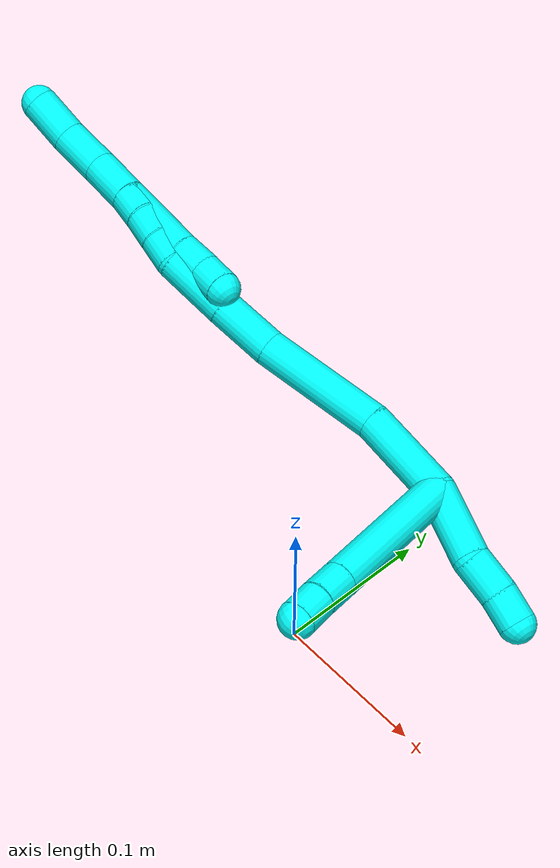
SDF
<sdf version="1.7">
 <world name="default">
  <model name="3">
   <static>0</static>
   <link name="3">
    <collision name="collision-cylinder-e_1_2_8">
     <pose>-0.031366 0.041158 -0.014623 -1.91217 -0.622782 0.855541</pose>
     <geometry><cylinder><radius>0.0125</radius><length>0.107548</length></cylinder></geometry>
     <surface>
      <friction><ode><mu>1.16</mu><mu2>1.16</mu2><slip1>0</slip1><slip2>0</slip2></ode></friction>
      <contact><ode><kp>1e+06</kp><kd>1</kd><max_vel>0</max_vel><min_depth>0.001</min_depth></ode></contact>
     </surface>
    </collision>
    <visual name="visual-cylinder-e_1_2_8">
     <pose>-0.031366 0.041158 -0.014623 -1.91217 -0.622782 0.855541</pose>
     <geometry><cylinder><radius>0.0125</radius><length>0.107548</length></cylinder></geometry>
     <material><ambient>0.003922 1 0.996078 1</ambient></material>
    </visual>
    <collision name="collision-cylinder-e_2_8_9">
     <pose>-0.069195 0.090853 -0.032199 -1.90388 -0.620991 0.84662</pose>
     <geometry><cylinder><radius>0.0125</radius><length>0.022215</length></cylinder></geometry>
     <surface>
      <friction><ode><mu>1.16</mu><mu2>1.16</mu2><slip1>0</slip1><slip2>0</slip2></ode></friction>
      <contact><ode><kp>1e+06</kp><kd>1</kd><max_vel>0</max_vel><min_depth>0.001</min_depth></ode></contact>
     </surface>
    </collision>
    <visual name="visual-cylinder-e_2_8_9">
     <pose>-0.069195 0.090853 -0.032199 -1.90388 -0.620991 0.84662</pose>
     <geometry><cylinder><radius>0.0125</radius><length>0.022215</length></cylinder></geometry>
     <material><ambient>0.003922 1 0.996078 1</ambient></material>
    </visual>
    <collision name="collision-cylinder-e_3_9_6">
     <pose>-0.081019 0.107438 -0.038132 -1.92532 -0.558392 0.781295</pose>
     <geometry><cylinder><radius>0.0125</radius><length>0.020237</length></cylinder></geometry>
     <surface>
      <friction><ode><mu>1.16</mu><mu2>1.16</mu2><slip1>0</slip1><slip2>0</slip2></ode></friction>
      <contact><ode><kp>1e+06</kp><kd>1</kd><max_vel>0</max_vel><min_depth>0.001</min_depth></ode></contact>
     </surface>
    </collision>
    <visual name="visual-cylinder-e_3_9_6">
     <pose>-0.081019 0.107438 -0.038132 -1.92532 -0.558392 0.781295</pose>
     <geometry><cylinder><radius>0.0125</radius><length>0.020237</length></cylinder></geometry>
     <material><ambient>0.003922 1 0.996078 1</ambient></material>
    </visual>
    <collision name="collision-cylinder-e_1_2_10">
     <pose>-0.000618 0.00457 -0.024822 -2.95953 -0.024468 0.266474</pose>
     <geometry><cylinder><radius>0.0125</radius><length>0.050493</length></cylinder></geometry>
     <surface>
      <friction><ode><mu>1.16</mu><mu2>1.16</mu2><slip1>0</slip1><slip2>0</slip2></ode></friction>
      <contact><ode><kp>1e+06</kp><kd>1</kd><max_vel>0</max_vel><min_depth>0.001</min_depth></ode></contact>
     </surface>
    </collision>
    <visual name="visual-cylinder-e_1_2_10">
     <pose>-0.000618 0.00457 -0.024822 -2.95953 -0.024468 0.266474</pose>
     <geometry><cylinder><radius>0.0125</radius><length>0.050493</length></cylinder></geometry>
     <material><ambient>0.003922 1 0.996078 1</ambient></material>
    </visual>
    <collision name="collision-cylinder-e_2_10_11">
     <pose>0.002094 0.00879 -0.062994 3.11544 0.244331 2.92935</pose>
     <geometry><cylinder><radius>0.0125</radius><length>0.027529</length></cylinder></geometry>
     <surface>
      <friction><ode><mu>1.16</mu><mu2>1.16</mu2><slip1>0</slip1><slip2>0</slip2></ode></friction>
      <contact><ode><kp>1e+06</kp><kd>1</kd><max_vel>0</max_vel><min_depth>0.001</min_depth></ode></contact>
     </surface>
    </collision>
    <visual name="visual-cylinder-e_2_10_11">
     <pose>0.002094 0.00879 -0.062994 3.11544 0.244331 2.92935</pose>
     <geometry><cylinder><radius>0.0125</radius><length>0.027529</length></cylinder></geometry>
     <material><ambient>0.003922 1 0.996078 1</ambient></material>
    </visual>
    <collision name="collision-cylinder-e_3_11_5">
     <pose>0.007532 0.009495 -0.087079 -3.04367 0.193018 -2.20452</pose>
     <geometry><cylinder><radius>0.0125</radius><length>0.021978</length></cylinder></geometry>
     <surface>
      <friction><ode><mu>1.16</mu><mu2>1.16</mu2><slip1>0</slip1><slip2>0</slip2></ode></friction>
      <contact><ode><kp>1e+06</kp><kd>1</kd><max_vel>0</max_vel><min_depth>0.001</min_depth></ode></contact>
     </surface>
    </collision>
    <visual name="visual-cylinder-e_3_11_5">
     <pose>0.007532 0.009495 -0.087079 -3.04367 0.193018 -2.20452</pose>
     <geometry><cylinder><radius>0.0125</radius><length>0.021978</length></cylinder></geometry>
     <material><ambient>0.003922 1 0.996078 1</ambient></material>
    </visual>
    <collision name="collision-cylinder-e_1_2_12">
     <pose>0.000811 0.002822 0.031806 -0.088485 0.025379 -0.001124</pose>
     <geometry><cylinder><radius>0.0125</radius><length>0.063881</length></cylinder></geometry>
     <surface>
      <friction><ode><mu>1.16</mu><mu2>1.16</mu2><slip1>0</slip1><slip2>0</slip2></ode></friction>
      <contact><ode><kp>1e+06</kp><kd>1</kd><max_vel>0</max_vel><min_depth>0.001</min_depth></ode></contact>
     </surface>
    </collision>
    <visual name="visual-cylinder-e_1_2_12">
     <pose>0.000811 0.002822 0.031806 -0.088485 0.025379 -0.001124</pose>
     <geometry><cylinder><radius>0.0125</radius><length>0.063881</length></cylinder></geometry>
     <material><ambient>0.003922 1 0.996078 1</ambient></material>
    </visual>
    <collision name="collision-cylinder-e_2_12_13">
     <pose>-4.6e-05 0.018076 0.105551 -0.288186 -0.038087 0.005527</pose>
     <geometry><cylinder><radius>0.0125</radius><length>0.087551</length></cylinder></geometry>
     <surface>
      <friction><ode><mu>1.16</mu><mu2>1.16</mu2><slip1>0</slip1><slip2>0</slip2></ode></friction>
      <contact><ode><kp>1e+06</kp><kd>1</kd><max_vel>0</max_vel><min_depth>0.001</min_depth></ode></contact>
     </surface>
    </collision>
    <visual name="visual-cylinder-e_2_12_13">
     <pose>-4.6e-05 0.018076 0.105551 -0.288186 -0.038087 0.005527</pose>
     <geometry><cylinder><radius>0.0125</radius><length>0.087551</length></cylinder></geometry>
     <material><ambient>0.003922 1 0.996078 1</ambient></material>
    </visual>
    <collision name="collision-cylinder-e_3_13_14">
     <pose>-0.005473 0.034687 0.167484 -0.206034 -0.182051 0.018873</pose>
     <geometry><cylinder><radius>0.0125</radius><length>0.041537</length></cylinder></geometry>
     <surface>
      <friction><ode><mu>1.16</mu><mu2>1.16</mu2><slip1>0</slip1><slip2>0</slip2></ode></friction>
      <contact><ode><kp>1e+06</kp><kd>1</kd><max_vel>0</max_vel><min_depth>0.001</min_depth></ode></contact>
     </surface>
    </collision>
    <visual name="visual-cylinder-e_3_13_14">
     <pose>-0.005473 0.034687 0.167484 -0.206034 -0.182051 0.018873</pose>
     <geometry><cylinder><radius>0.0125</radius><length>0.041537</length></cylinder></geometry>
     <material><ambient>0.003922 1 0.996078 1</ambient></material>
    </visual>
    <collision name="collision-cylinder-e_4_14_15">
     <pose>-0.013883 0.042927 0.2101 -0.177648 -0.199639 0.017838</pose>
     <geometry><cylinder><radius>0.0125</radius><length>0.046901</length></cylinder></geometry>
     <surface>
      <friction><ode><mu>1.16</mu><mu2>1.16</mu2><slip1>0</slip1><slip2>0</slip2></ode></friction>
      <contact><ode><kp>1e+06</kp><kd>1</kd><max_vel>0</max_vel><min_depth>0.001</min_depth></ode></contact>
     </surface>
    </collision>
    <visual name="visual-cylinder-e_4_14_15">
     <pose>-0.013883 0.042927 0.2101 -0.177648 -0.199639 0.017838</pose>
     <geometry><cylinder><radius>0.0125</radius><length>0.046901</length></cylinder></geometry>
     <material><ambient>0.003922 1 0.996078 1</ambient></material>
    </visual>
    <collision name="collision-cylinder-e_5_15_16">
     <pose>-0.019365 0.046651 0.24272 0.033839 -0.082938 -0.001404</pose>
     <geometry><cylinder><radius>0.0125</radius><length>0.020075</length></cylinder></geometry>
     <surface>
      <friction><ode><mu>1.16</mu><mu2>1.16</mu2><slip1>0</slip1><slip2>0</slip2></ode></friction>
      <contact><ode><kp>1e+06</kp><kd>1</kd><max_vel>0</max_vel><min_depth>0.001</min_depth></ode></contact>
     </surface>
    </collision>
    <visual name="visual-cylinder-e_5_15_16">
     <pose>-0.019365 0.046651 0.24272 0.033839 -0.082938 -0.001404</pose>
     <geometry><cylinder><radius>0.0125</radius><length>0.020075</length></cylinder></geometry>
     <material><ambient>0.003922 1 0.996078 1</ambient></material>
    </visual>
    <collision name="collision-cylinder-e_6_16_17">
     <pose>-0.020272 0.045908 0.262715 0.040365 -0.007481 -0.000151</pose>
     <geometry><cylinder><radius>0.0125</radius><length>0.020011</length></cylinder></geometry>
     <surface>
      <friction><ode><mu>1.16</mu><mu2>1.16</mu2><slip1>0</slip1><slip2>0</slip2></ode></friction>
      <contact><ode><kp>1e+06</kp><kd>1</kd><max_vel>0</max_vel><min_depth>0.001</min_depth></ode></contact>
     </surface>
    </collision>
    <visual name="visual-cylinder-e_6_16_17">
     <pose>-0.020272 0.045908 0.262715 0.040365 -0.007481 -0.000151</pose>
     <geometry><cylinder><radius>0.0125</radius><length>0.020011</length></cylinder></geometry>
     <material><ambient>0.003922 1 0.996078 1</ambient></material>
    </visual>
    <collision name="collision-cylinder-e_7_17_1">
     <pose>-0.019302 0.045578 0.282679 -0.007355 0.104409 -0.000384</pose>
     <geometry><cylinder><radius>0.0125</radius><length>0.020044</length></cylinder></geometry>
     <surface>
      <friction><ode><mu>1.16</mu><mu2>1.16</mu2><slip1>0</slip1><slip2>0</slip2></ode></friction>
      <contact><ode><kp>1e+06</kp><kd>1</kd><max_vel>0</max_vel><min_depth>0.001</min_depth></ode></contact>
     </surface>
    </collision>
    <visual name="visual-cylinder-e_7_17_1">
     <pose>-0.019302 0.045578 0.282679 -0.007355 0.104409 -0.000384</pose>
     <geometry><cylinder><radius>0.0125</radius><length>0.020044</length></cylinder></geometry>
     <material><ambient>0.003922 1 0.996078 1</ambient></material>
    </visual>
    <collision name="collision-cylinder-e_1_1_18">
     <pose>-0.016117 0.047457 0.309427 -0.107209 0.126171 -0.006779</pose>
     <geometry><cylinder><radius>0.0125</radius><length>0.034026</length></cylinder></geometry>
     <surface>
      <friction><ode><mu>1.16</mu><mu2>1.16</mu2><slip1>0</slip1><slip2>0</slip2></ode></friction>
      <contact><ode><kp>1e+06</kp><kd>1</kd><max_vel>0</max_vel><min_depth>0.001</min_depth></ode></contact>
     </surface>
    </collision>
    <visual name="visual-cylinder-e_1_1_18">
     <pose>-0.016117 0.047457 0.309427 -0.107209 0.126171 -0.006779</pose>
     <geometry><cylinder><radius>0.0125</radius><length>0.034026</length></cylinder></geometry>
     <material><ambient>0.003922 1 0.996078 1</ambient></material>
    </visual>
    <collision name="collision-cylinder-e_2_18_19">
     <pose>-0.014994 0.051595 0.342775 -0.139836 -0.06079 0.004259</pose>
     <geometry><cylinder><radius>0.0125</radius><length>0.033524</length></cylinder></geometry>
     <surface>
      <friction><ode><mu>1.16</mu><mu2>1.16</mu2><slip1>0</slip1><slip2>0</slip2></ode></friction>
      <contact><ode><kp>1e+06</kp><kd>1</kd><max_vel>0</max_vel><min_depth>0.001</min_depth></ode></contact>
     </surface>
    </collision>
    <visual name="visual-cylinder-e_2_18_19">
     <pose>-0.014994 0.051595 0.342775 -0.139836 -0.06079 0.004259</pose>
     <geometry><cylinder><radius>0.0125</radius><length>0.033524</length></cylinder></geometry>
     <material><ambient>0.003922 1 0.996078 1</ambient></material>
    </visual>
    <collision name="collision-cylinder-e_3_19_4">
     <pose>-0.019674 0.055179 0.3751 -0.079253 -0.227616 0.009063</pose>
     <geometry><cylinder><radius>0.0125</radius><length>0.03245</length></cylinder></geometry>
     <surface>
      <friction><ode><mu>1.16</mu><mu2>1.16</mu2><slip1>0</slip1><slip2>0</slip2></ode></friction>
      <contact><ode><kp>1e+06</kp><kd>1</kd><max_vel>0</max_vel><min_depth>0.001</min_depth></ode></contact>
     </surface>
    </collision>
    <visual name="visual-cylinder-e_3_19_4">
     <pose>-0.019674 0.055179 0.3751 -0.079253 -0.227616 0.009063</pose>
     <geometry><cylinder><radius>0.0125</radius><length>0.03245</length></cylinder></geometry>
     <material><ambient>0.003922 1 0.996078 1</ambient></material>
    </visual>
    <collision name="collision-cylinder-e_1_1_20">
     <pose>-0.01835 0.042223 0.264247 3.02147 -0.003233 -0.053741</pose>
     <geometry><cylinder><radius>0.0125</radius><length>0.05721</length></cylinder></geometry>
     <surface>
      <friction><ode><mu>1.16</mu><mu2>1.16</mu2><slip1>0</slip1><slip2>0</slip2></ode></friction>
      <contact><ode><kp>1e+06</kp><kd>1</kd><max_vel>0</max_vel><min_depth>0.001</min_depth></ode></contact>
     </surface>
    </collision>
    <visual name="visual-cylinder-e_1_1_20">
     <pose>-0.01835 0.042223 0.264247 3.02147 -0.003233 -0.053741</pose>
     <geometry><cylinder><radius>0.0125</radius><length>0.05721</length></cylinder></geometry>
     <material><ambient>0.003922 1 0.996078 1</ambient></material>
    </visual>
    <collision name="collision-cylinder-e_2_20_21">
     <pose>-0.017712 0.036762 0.224995 2.95635 0.06608 0.683702</pose>
     <geometry><cylinder><radius>0.0125</radius><length>0.022133</length></cylinder></geometry>
     <surface>
      <friction><ode><mu>1.16</mu><mu2>1.16</mu2><slip1>0</slip1><slip2>0</slip2></ode></friction>
      <contact><ode><kp>1e+06</kp><kd>1</kd><max_vel>0</max_vel><min_depth>0.001</min_depth></ode></contact>
     </surface>
    </collision>
    <visual name="visual-cylinder-e_2_20_21">
     <pose>-0.017712 0.036762 0.224995 2.95635 0.06608 0.683702</pose>
     <geometry><cylinder><radius>0.0125</radius><length>0.022133</length></cylinder></geometry>
     <material><ambient>0.003922 1 0.996078 1</ambient></material>
    </visual>
    <collision name="collision-cylinder-e_3_21_3">
     <pose>-0.018881 0.033584 0.204054 3.02865 -0.185005 -2.04699</pose>
     <geometry><cylinder><radius>0.0125</radius><length>0.020657</length></cylinder></geometry>
     <surface>
      <friction><ode><mu>1.16</mu><mu2>1.16</mu2><slip1>0</slip1><slip2>0</slip2></ode></friction>
      <contact><ode><kp>1e+06</kp><kd>1</kd><max_vel>0</max_vel><min_depth>0.001</min_depth></ode></contact>
     </surface>
    </collision>
    <visual name="visual-cylinder-e_3_21_3">
     <pose>-0.018881 0.033584 0.204054 3.02865 -0.185005 -2.04699</pose>
     <geometry><cylinder><radius>0.0125</radius><length>0.020657</length></cylinder></geometry>
     <material><ambient>0.003922 1 0.996078 1</ambient></material>
    </visual>
    <collision name="collision-sphere-3">
     <pose>-0.020781 0.032439 0.193966 0 -0 0</pose>
     <geometry><sphere><radius>0.0125</radius></sphere></geometry>
     <surface>
      <friction><ode><mu>1.16</mu><mu2>1.16</mu2><slip1>0</slip1><slip2>0</slip2></ode></friction>
      <contact><ode><kp>1e+06</kp><kd>1</kd><max_vel>0</max_vel><min_depth>0.001</min_depth></ode></contact>
     </surface>
    </collision>
    <visual name="visual-sphere-3">
     <pose>-0.020781 0.032439 0.193966 0 -0 0</pose>
     <geometry><sphere><radius>0.0125</radius></sphere></geometry>
     <material><ambient>0.003922 1 0.996078 1</ambient></material>
    </visual>
    <collision name="collision-sphere-21">
     <pose>-0.016981 0.034728 0.214141 0 -0 0</pose>
     <geometry><sphere><radius>0.0125</radius></sphere></geometry>
     <surface>
      <friction><ode><mu>1.16</mu><mu2>1.16</mu2><slip1>0</slip1><slip2>0</slip2></ode></friction>
      <contact><ode><kp>1e+06</kp><kd>1</kd><max_vel>0</max_vel><min_depth>0.001</min_depth></ode></contact>
     </surface>
    </collision>
    <visual name="visual-sphere-21">
     <pose>-0.016981 0.034728 0.214141 0 -0 0</pose>
     <geometry><sphere><radius>0.0125</radius></sphere></geometry>
     <material><ambient>0.003922 1 0.996078 1</ambient></material>
    </visual>
    <collision name="collision-sphere-20">
     <pose>-0.018443 0.038795 0.235848 0 -0 0</pose>
     <geometry><sphere><radius>0.0125</radius></sphere></geometry>
     <surface>
      <friction><ode><mu>1.16</mu><mu2>1.16</mu2><slip1>0</slip1><slip2>0</slip2></ode></friction>
      <contact><ode><kp>1e+06</kp><kd>1</kd><max_vel>0</max_vel><min_depth>0.001</min_depth></ode></contact>
     </surface>
    </collision>
    <visual name="visual-sphere-20">
     <pose>-0.018443 0.038795 0.235848 0 -0 0</pose>
     <geometry><sphere><radius>0.0125</radius></sphere></geometry>
     <material><ambient>0.003922 1 0.996078 1</ambient></material>
    </visual>
    <collision name="collision-sphere-4">
     <pose>-0.023335 0.05643 0.390857 0 -0 0</pose>
     <geometry><sphere><radius>0.0125</radius></sphere></geometry>
     <surface>
      <friction><ode><mu>1.16</mu><mu2>1.16</mu2><slip1>0</slip1><slip2>0</slip2></ode></friction>
      <contact><ode><kp>1e+06</kp><kd>1</kd><max_vel>0</max_vel><min_depth>0.001</min_depth></ode></contact>
     </surface>
    </collision>
    <visual name="visual-sphere-4">
     <pose>-0.023335 0.05643 0.390857 0 -0 0</pose>
     <geometry><sphere><radius>0.0125</radius></sphere></geometry>
     <material><ambient>0.003922 1 0.996078 1</ambient></material>
    </visual>
    <collision name="collision-sphere-11">
     <pose>0.005424 0.008441 -0.076345 0 -0 0</pose>
     <geometry><sphere><radius>0.0125</radius></sphere></geometry>
     <surface>
      <friction><ode><mu>1.16</mu><mu2>1.16</mu2><slip1>0</slip1><slip2>0</slip2></ode></friction>
      <contact><ode><kp>1e+06</kp><kd>1</kd><max_vel>0</max_vel><min_depth>0.001</min_depth></ode></contact>
     </surface>
    </collision>
    <visual name="visual-sphere-11">
     <pose>0.005424 0.008441 -0.076345 0 -0 0</pose>
     <geometry><sphere><radius>0.0125</radius></sphere></geometry>
     <material><ambient>0.003922 1 0.996078 1</ambient></material>
    </visual>
    <collision name="collision-sphere-10">
     <pose>-0.001235 0.009139 -0.049643 0 -0 0</pose>
     <geometry><sphere><radius>0.0125</radius></sphere></geometry>
     <surface>
      <friction><ode><mu>1.16</mu><mu2>1.16</mu2><slip1>0</slip1><slip2>0</slip2></ode></friction>
      <contact><ode><kp>1e+06</kp><kd>1</kd><max_vel>0</max_vel><min_depth>0.001</min_depth></ode></contact>
     </surface>
    </collision>
    <visual name="visual-sphere-10">
     <pose>-0.001235 0.009139 -0.049643 0 -0 0</pose>
     <geometry><sphere><radius>0.0125</radius></sphere></geometry>
     <material><ambient>0.003922 1 0.996078 1</ambient></material>
    </visual>
    <collision name="collision-sphere-6">
     <pose>-0.08638 0.115486 -0.041111 0 -0 0</pose>
     <geometry><sphere><radius>0.0125</radius></sphere></geometry>
     <surface>
      <friction><ode><mu>1.16</mu><mu2>1.16</mu2><slip1>0</slip1><slip2>0</slip2></ode></friction>
      <contact><ode><kp>1e+06</kp><kd>1</kd><max_vel>0</max_vel><min_depth>0.001</min_depth></ode></contact>
     </surface>
    </collision>
    <visual name="visual-sphere-6">
     <pose>-0.08638 0.115486 -0.041111 0 -0 0</pose>
     <geometry><sphere><radius>0.0125</radius></sphere></geometry>
     <material><ambient>0.003922 1 0.996078 1</ambient></material>
    </visual>
    <collision name="collision-sphere-9">
     <pose>-0.075658 0.099391 -0.035153 0 -0 0</pose>
     <geometry><sphere><radius>0.0125</radius></sphere></geometry>
     <surface>
      <friction><ode><mu>1.16</mu><mu2>1.16</mu2><slip1>0</slip1><slip2>0</slip2></ode></friction>
      <contact><ode><kp>1e+06</kp><kd>1</kd><max_vel>0</max_vel><min_depth>0.001</min_depth></ode></contact>
     </surface>
    </collision>
    <visual name="visual-sphere-9">
     <pose>-0.075658 0.099391 -0.035153 0 -0 0</pose>
     <geometry><sphere><radius>0.0125</radius></sphere></geometry>
     <material><ambient>0.003922 1 0.996078 1</ambient></material>
    </visual>
    <collision name="collision-sphere-2">
     <geometry><sphere><radius>0.0125</radius></sphere></geometry>
     <surface>
      <friction><ode><mu>1.16</mu><mu2>1.16</mu2><slip1>0</slip1><slip2>0</slip2></ode></friction>
      <contact><ode><kp>1e+06</kp><kd>1</kd><max_vel>0</max_vel><min_depth>0.001</min_depth></ode></contact>
     </surface>
    </collision>
    <visual name="visual-sphere-2">
     <geometry><sphere><radius>0.0125</radius></sphere></geometry>
     <material><ambient>0.003922 1 0.996078 1</ambient></material>
    </visual>
    <collision name="collision-sphere-19">
     <pose>-0.016013 0.053927 0.359343 0 -0 0</pose>
     <geometry><sphere><radius>0.0125</radius></sphere></geometry>
     <surface>
      <friction><ode><mu>1.16</mu><mu2>1.16</mu2><slip1>0</slip1><slip2>0</slip2></ode></friction>
      <contact><ode><kp>1e+06</kp><kd>1</kd><max_vel>0</max_vel><min_depth>0.001</min_depth></ode></contact>
     </surface>
    </collision>
    <visual name="visual-sphere-19">
     <pose>-0.016013 0.053927 0.359343 0 -0 0</pose>
     <geometry><sphere><radius>0.0125</radius></sphere></geometry>
     <material><ambient>0.003922 1 0.996078 1</ambient></material>
    </visual>
    <collision name="collision-sphere-8">
     <pose>-0.062733 0.082316 -0.029246 0 -0 0</pose>
     <geometry><sphere><radius>0.0125</radius></sphere></geometry>
     <surface>
      <friction><ode><mu>1.16</mu><mu2>1.16</mu2><slip1>0</slip1><slip2>0</slip2></ode></friction>
      <contact><ode><kp>1e+06</kp><kd>1</kd><max_vel>0</max_vel><min_depth>0.001</min_depth></ode></contact>
     </surface>
    </collision>
    <visual name="visual-sphere-8">
     <pose>-0.062733 0.082316 -0.029246 0 -0 0</pose>
     <geometry><sphere><radius>0.0125</radius></sphere></geometry>
     <material><ambient>0.003922 1 0.996078 1</ambient></material>
    </visual>
    <collision name="collision-sphere-5">
     <pose>0.00964 0.01055 -0.097812 0 -0 0</pose>
     <geometry><sphere><radius>0.0125</radius></sphere></geometry>
     <surface>
      <friction><ode><mu>1.16</mu><mu2>1.16</mu2><slip1>0</slip1><slip2>0</slip2></ode></friction>
      <contact><ode><kp>1e+06</kp><kd>1</kd><max_vel>0</max_vel><min_depth>0.001</min_depth></ode></contact>
     </surface>
    </collision>
    <visual name="visual-sphere-5">
     <pose>0.00964 0.01055 -0.097812 0 -0 0</pose>
     <geometry><sphere><radius>0.0125</radius></sphere></geometry>
     <material><ambient>0.003922 1 0.996078 1</ambient></material>
    </visual>
    <collision name="collision-sphere-12">
     <pose>0.001621 0.005643 0.063611 0 -0 0</pose>
     <geometry><sphere><radius>0.0125</radius></sphere></geometry>
     <surface>
      <friction><ode><mu>1.16</mu><mu2>1.16</mu2><slip1>0</slip1><slip2>0</slip2></ode></friction>
      <contact><ode><kp>1e+06</kp><kd>1</kd><max_vel>0</max_vel><min_depth>0.001</min_depth></ode></contact>
     </surface>
    </collision>
    <visual name="visual-sphere-12">
     <pose>0.001621 0.005643 0.063611 0 -0 0</pose>
     <geometry><sphere><radius>0.0125</radius></sphere></geometry>
     <material><ambient>0.003922 1 0.996078 1</ambient></material>
    </visual>
    <collision name="collision-sphere-13">
     <pose>-0.001713 0.030508 0.147491 0 -0 0</pose>
     <geometry><sphere><radius>0.0125</radius></sphere></geometry>
     <surface>
      <friction><ode><mu>1.16</mu><mu2>1.16</mu2><slip1>0</slip1><slip2>0</slip2></ode></friction>
      <contact><ode><kp>1e+06</kp><kd>1</kd><max_vel>0</max_vel><min_depth>0.001</min_depth></ode></contact>
     </surface>
    </collision>
    <visual name="visual-sphere-13">
     <pose>-0.001713 0.030508 0.147491 0 -0 0</pose>
     <geometry><sphere><radius>0.0125</radius></sphere></geometry>
     <material><ambient>0.003922 1 0.996078 1</ambient></material>
    </visual>
    <collision name="collision-sphere-14">
     <pose>-0.009233 0.038866 0.187477 0 -0 0</pose>
     <geometry><sphere><radius>0.0125</radius></sphere></geometry>
     <surface>
      <friction><ode><mu>1.16</mu><mu2>1.16</mu2><slip1>0</slip1><slip2>0</slip2></ode></friction>
      <contact><ode><kp>1e+06</kp><kd>1</kd><max_vel>0</max_vel><min_depth>0.001</min_depth></ode></contact>
     </surface>
    </collision>
    <visual name="visual-sphere-14">
     <pose>-0.009233 0.038866 0.187477 0 -0 0</pose>
     <geometry><sphere><radius>0.0125</radius></sphere></geometry>
     <material><ambient>0.003922 1 0.996078 1</ambient></material>
    </visual>
    <collision name="collision-sphere-15">
     <pose>-0.018534 0.046989 0.232723 0 -0 0</pose>
     <geometry><sphere><radius>0.0125</radius></sphere></geometry>
     <surface>
      <friction><ode><mu>1.16</mu><mu2>1.16</mu2><slip1>0</slip1><slip2>0</slip2></ode></friction>
      <contact><ode><kp>1e+06</kp><kd>1</kd><max_vel>0</max_vel><min_depth>0.001</min_depth></ode></contact>
     </surface>
    </collision>
    <visual name="visual-sphere-15">
     <pose>-0.018534 0.046989 0.232723 0 -0 0</pose>
     <geometry><sphere><radius>0.0125</radius></sphere></geometry>
     <material><ambient>0.003922 1 0.996078 1</ambient></material>
    </visual>
    <collision name="collision-sphere-16">
     <pose>-0.020197 0.046312 0.252717 0 -0 0</pose>
     <geometry><sphere><radius>0.0125</radius></sphere></geometry>
     <surface>
      <friction><ode><mu>1.16</mu><mu2>1.16</mu2><slip1>0</slip1><slip2>0</slip2></ode></friction>
      <contact><ode><kp>1e+06</kp><kd>1</kd><max_vel>0</max_vel><min_depth>0.001</min_depth></ode></contact>
     </surface>
    </collision>
    <visual name="visual-sphere-16">
     <pose>-0.020197 0.046312 0.252717 0 -0 0</pose>
     <geometry><sphere><radius>0.0125</radius></sphere></geometry>
     <material><ambient>0.003922 1 0.996078 1</ambient></material>
    </visual>
    <collision name="collision-sphere-17">
     <pose>-0.020347 0.045505 0.272712 0 -0 0</pose>
     <geometry><sphere><radius>0.0125</radius></sphere></geometry>
     <surface>
      <friction><ode><mu>1.16</mu><mu2>1.16</mu2><slip1>0</slip1><slip2>0</slip2></ode></friction>
      <contact><ode><kp>1e+06</kp><kd>1</kd><max_vel>0</max_vel><min_depth>0.001</min_depth></ode></contact>
     </surface>
    </collision>
    <visual name="visual-sphere-17">
     <pose>-0.020347 0.045505 0.272712 0 -0 0</pose>
     <geometry><sphere><radius>0.0125</radius></sphere></geometry>
     <material><ambient>0.003922 1 0.996078 1</ambient></material>
    </visual>
    <collision name="collision-sphere-1">
     <pose>-0.018258 0.045651 0.292646 0 -0 0</pose>
     <geometry><sphere><radius>0.0125</radius></sphere></geometry>
     <surface>
      <friction><ode><mu>1.16</mu><mu2>1.16</mu2><slip1>0</slip1><slip2>0</slip2></ode></friction>
      <contact><ode><kp>1e+06</kp><kd>1</kd><max_vel>0</max_vel><min_depth>0.001</min_depth></ode></contact>
     </surface>
    </collision>
    <visual name="visual-sphere-1">
     <pose>-0.018258 0.045651 0.292646 0 -0 0</pose>
     <geometry><sphere><radius>0.0125</radius></sphere></geometry>
     <material><ambient>0.003922 1 0.996078 1</ambient></material>
    </visual>
    <collision name="collision-sphere-18">
     <pose>-0.013976 0.049263 0.326208 0 -0 0</pose>
     <geometry><sphere><radius>0.0125</radius></sphere></geometry>
     <surface>
      <friction><ode><mu>1.16</mu><mu2>1.16</mu2><slip1>0</slip1><slip2>0</slip2></ode></friction>
      <contact><ode><kp>1e+06</kp><kd>1</kd><max_vel>0</max_vel><min_depth>0.001</min_depth></ode></contact>
     </surface>
    </collision>
    <visual name="visual-sphere-18">
     <pose>-0.013976 0.049263 0.326208 0 -0 0</pose>
     <geometry><sphere><radius>0.0125</radius></sphere></geometry>
     <material><ambient>0.003922 1 0.996078 1</ambient></material>
    </visual>
    <inertial>
     <pose>-0.015855 0.035125 0.125897 0 -0 0</pose>
     <mass>0.75</mass>
     <inertia>
      <ixx>0.000267</ixx>
      <ixy>0</ixy>
      <ixz>0</ixz>
      <iyy>0.000195</iyy>
      <iyz>0</iyz>
      <izz>-2.7e-05</izz>
     </inertia>
    </inertial>
   </link>
   <pose>0.000462 0.121249 0.042859 -1.11307 1.12623 1.85574</pose>
  </model>
 </world>
</sdf>
